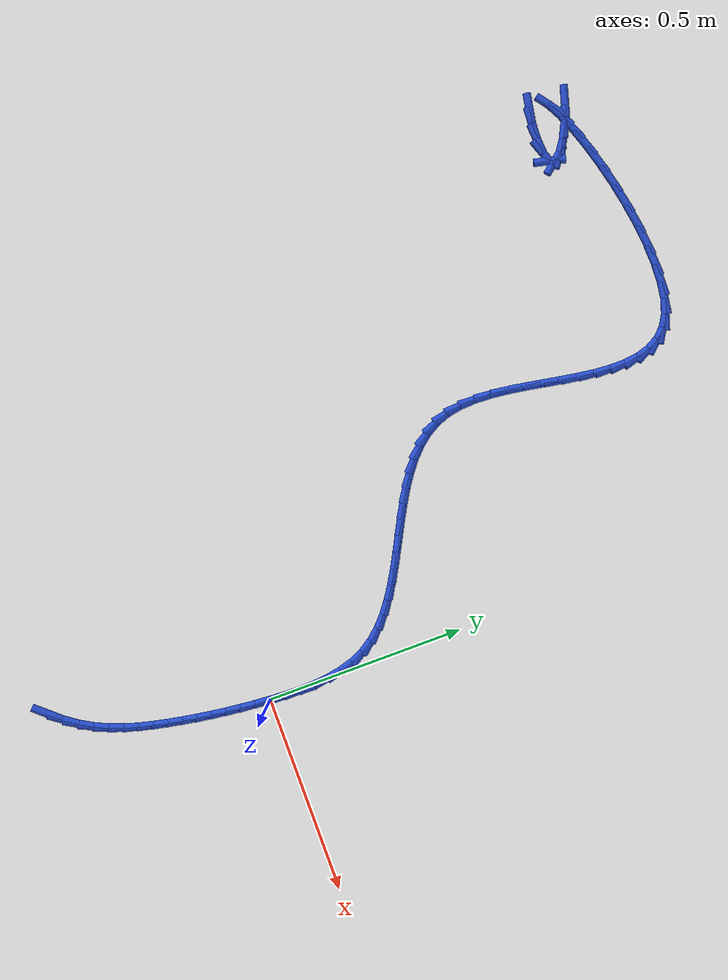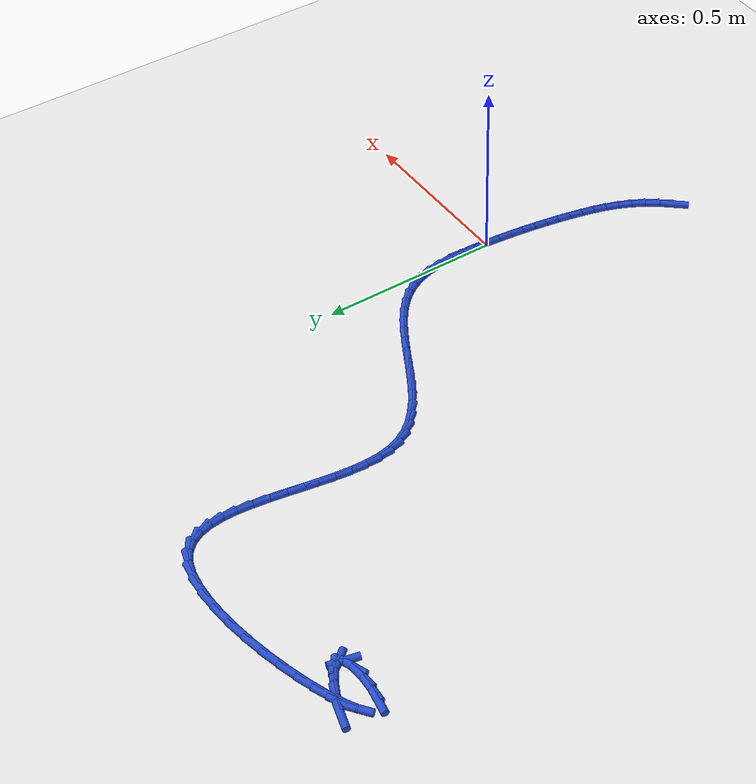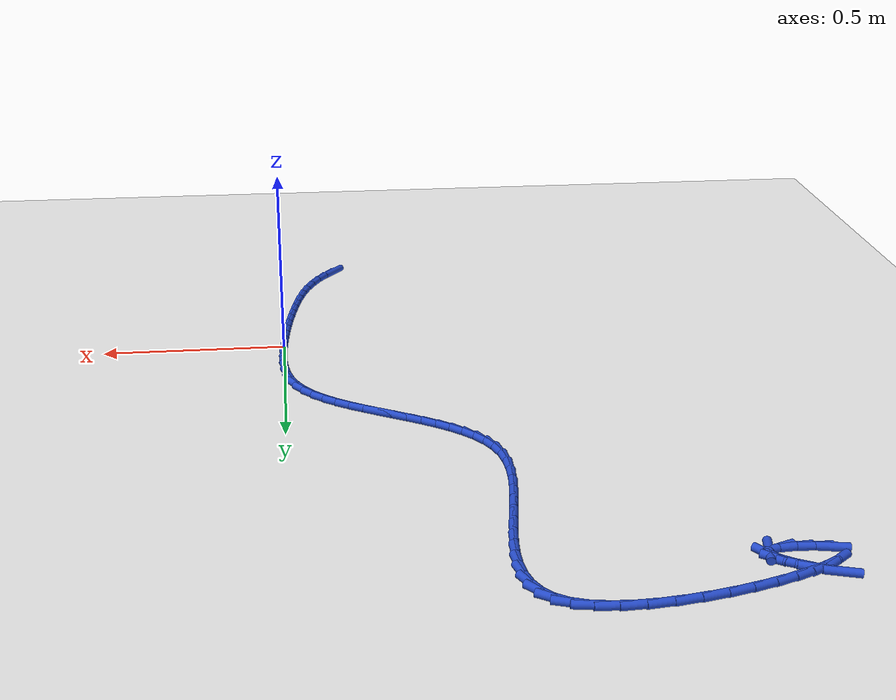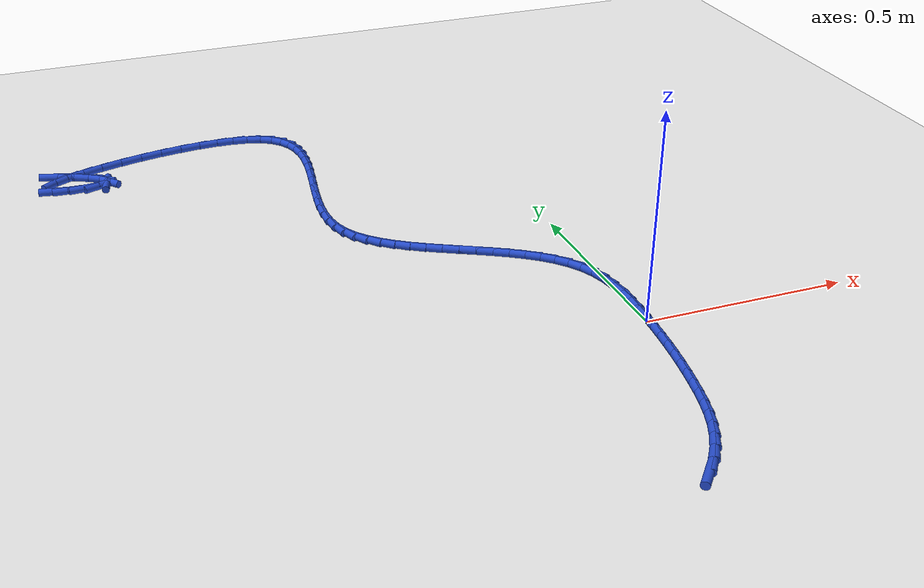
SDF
<sdf version="1.6">
 <world name="default">
  <model name="ground_plane">
   <static>1</static>
   <link name="link">
    <collision name="collision">
     <geometry><plane><normal>0 0 1</normal><size>100 100</size></plane></geometry>
     <surface><friction><ode><mu>100</mu><mu2>50</mu2></ode></friction></surface>
    </collision>
    <visual name="visual">
     <cast_shadows>0</cast_shadows>
     <geometry><plane><normal>0 0 1</normal><size>100 100</size></plane></geometry>
     <material>
      <script><uri>file://media/materials/scripts/gazebo.material</uri><name>Gazebo/WhiteGlow</name></script>
     </material>
    </visual>
   </link>
  </model>
  <model name="line">
   <link name="link_0">
    <pose>-1.5178830414797062e-18 -2.7755575615628914e-17 0.01 0 1.57 1.5170530943298772</pose>
    <collision name="collision">
     <geometry><cylinder><radius>0.01</radius><length>0.08</length></cylinder></geometry>
    </collision>
    <visual name="visual">
     <material>
      <script><name>Gazebo/Blue</name><uri>file://media/materials/scripts/gazebo.material</uri></script>
     </material>
     <geometry><cylinder><radius>0.01</radius><length>0.08</length></cylinder></geometry>
    </visual>
   </link>
   <link name="link_1">
    <pose>0.0020785992189331615 0.03863923898723506 0.01 0 1.57 1.5495222511187354</pose>
    <collision name="collision">
     <geometry><cylinder><radius>0.01</radius><length>0.08</length></cylinder></geometry>
    </collision>
    <visual name="visual">
     <material>
      <script><name>Gazebo/Blue</name><uri>file://media/materials/scripts/gazebo.material</uri></script>
     </material>
     <geometry><cylinder><radius>0.01</radius><length>0.08</length></cylinder></geometry>
    </visual>
   </link>
   <link name="link_2">
    <pose>0.002904720988601142 0.07746570308452606 0.01 0 1.57 -1.5441596162405162</pose>
    <collision name="collision">
     <geometry><cylinder><radius>0.01</radius><length>0.08</length></cylinder></geometry>
    </collision>
    <visual name="visual">
     <material>
      <script><name>Gazebo/Blue</name><uri>file://media/materials/scripts/gazebo.material</uri></script>
     </material>
     <geometry><cylinder><radius>0.01</radius><length>0.08</length></cylinder></geometry>
    </visual>
   </link>
   <link name="link_3">
    <pose>0.0018789900140086437 0.11596476514933175 0.01 0 1.57 -1.4787251162206834</pose>
    <collision name="collision">
     <geometry><cylinder><radius>0.01</radius><length>0.08</length></cylinder></geometry>
    </collision>
    <visual name="visual">
     <material>
      <script><name>Gazebo/Blue</name><uri>file://media/materials/scripts/gazebo.material</uri></script>
     </material>
     <geometry><cylinder><radius>0.01</radius><length>0.08</length></cylinder></geometry>
    </visual>
   </link>
   <link name="link_4">
    <pose>-0.0015979689998396251 0.1536217980391109 0.01 0 1.57 -1.3928769809905095</pose>
    <collision name="collision">
     <geometry><cylinder><radius>0.01</radius><length>0.08</length></cylinder></geometry>
    </collision>
    <visual name="visual">
     <material>
      <script><name>Gazebo/Blue</name><uri>file://media/materials/scripts/gazebo.material</uri></script>
     </material>
     <geometry><cylinder><radius>0.01</radius><length>0.08</length></cylinder></geometry>
    </visual>
   </link>
   <link name="link_5">
    <pose>-0.00812553134793896 0.18992217461132221 0.01 0 1.57 -1.283373060486346</pose>
    <collision name="collision">
     <geometry><cylinder><radius>0.01</radius><length>0.08</length></cylinder></geometry>
    </collision>
    <visual name="visual">
     <material>
      <script><name>Gazebo/Blue</name><uri>file://media/materials/scripts/gazebo.material</uri></script>
     </material>
     <geometry><cylinder><radius>0.01</radius><length>0.08</length></cylinder></geometry>
    </visual>
   </link>
   <link name="link_6">
    <pose>-0.018303072325284664 0.22435126772342456 0.01 0 1.57 -1.1477487399118411</pose>
    <collision name="collision">
     <geometry><cylinder><radius>0.01</radius><length>0.08</length></cylinder></geometry>
    </collision>
    <visual name="visual">
     <material>
      <script><name>Gazebo/Blue</name><uri>file://media/materials/scripts/gazebo.material</uri></script>
     </material>
     <geometry><cylinder><radius>0.01</radius><length>0.08</length></cylinder></geometry>
    </visual>
   </link>
   <link name="link_7">
    <pose>-0.032729967226872006 0.25639445023287655 0.01 0 1.57 -0.9920843205776065</pose>
    <collision name="collision">
     <geometry><cylinder><radius>0.01</radius><length>0.08</length></cylinder></geometry>
    </collision>
    <visual name="visual">
     <material>
      <script><name>Gazebo/Blue</name><uri>file://media/materials/scripts/gazebo.material</uri></script>
     </material>
     <geometry><cylinder><radius>0.01</radius><length>0.08</length></cylinder></geometry>
    </visual>
   </link>
   <link name="link_8">
    <pose>-0.05184516821218978 0.28565259870171955 0.01 0 1.57 -0.8498550706622849</pose>
    <collision name="collision">
     <geometry><cylinder><radius>0.01</radius><length>0.08</length></cylinder></geometry>
    </collision>
    <visual name="visual">
     <material>
      <script><name>Gazebo/Blue</name><uri>file://media/materials/scripts/gazebo.material</uri></script>
     </material>
     <geometry><cylinder><radius>0.01</radius><length>0.08</length></cylinder></geometry>
    </visual>
   </link>
   <link name="link_9">
    <pose>-0.07527280861990056 0.312313254402616 0.01 0 1.57 -0.7336496715813939</pose>
    <collision name="collision">
     <geometry><cylinder><radius>0.01</radius><length>0.08</length></cylinder></geometry>
    </collision>
    <visual name="visual">
     <material>
      <script><name>Gazebo/Blue</name><uri>file://media/materials/scripts/gazebo.material</uri></script>
     </material>
     <geometry><cylinder><radius>0.01</radius><length>0.08</length></cylinder></geometry>
    </visual>
   </link>
   <link name="link_10">
    <pose>-0.10237895651911431 0.3367497640692885 0.01 0 1.57 -0.6429238868509911</pose>
    <collision name="collision">
     <geometry><cylinder><radius>0.01</radius><length>0.08</length></cylinder></geometry>
    </collision>
    <visual name="visual">
     <material>
      <script><name>Gazebo/Blue</name><uri>file://media/materials/scripts/gazebo.material</uri></script>
     </material>
     <geometry><cylinder><radius>0.01</radius><length>0.08</length></cylinder></geometry>
    </visual>
   </link>
   <link name="link_11">
    <pose>-0.1325295773471854 0.35933554832971304 0.01 0 1.57 -0.5751607206195366</pose>
    <collision name="collision">
     <geometry><cylinder><radius>0.01</radius><length>0.08</length></cylinder></geometry>
    </collision>
    <visual name="visual">
     <material>
      <script><name>Gazebo/Blue</name><uri>file://media/materials/scripts/gazebo.material</uri></script>
     </material>
     <geometry><cylinder><radius>0.01</radius><length>0.08</length></cylinder></geometry>
    </visual>
   </link>
   <link name="link_12">
    <pose>-0.16509063654146838 0.38044402781186626 0.01 0 1.57 -0.527518195686932</pose>
    <collision name="collision">
     <geometry><cylinder><radius>0.01</radius><length>0.08</length></cylinder></geometry>
    </collision>
    <visual name="visual">
     <material>
      <script><name>Gazebo/Blue</name><uri>file://media/materials/scripts/gazebo.material</uri></script>
     </material>
     <geometry><cylinder><radius>0.01</radius><length>0.08</length></cylinder></geometry>
    </visual>
   </link>
   <link name="link_13">
    <pose>-0.19942809953931767 0.40044862314372454 0.01 0 1.57 -0.4976398556508698</pose>
    <collision name="collision">
     <geometry><cylinder><radius>0.01</radius><length>0.08</length></cylinder></geometry>
    </collision>
    <visual name="visual">
     <material>
      <script><name>Gazebo/Blue</name><uri>file://media/materials/scripts/gazebo.material</uri></script>
     </material>
     <geometry><cylinder><radius>0.01</radius><length>0.08</length></cylinder></geometry>
    </visual>
   </link>
   <link name="link_14">
    <pose>-0.2349079317780876 0.4197227549532642 0.01 0 1.57 -0.4839544376546903</pose>
    <collision name="collision">
     <geometry><cylinder><radius>0.01</radius><length>0.08</length></cylinder></geometry>
    </collision>
    <visual name="visual">
     <material>
      <script><name>Gazebo/Blue</name><uri>file://media/materials/scripts/gazebo.material</uri></script>
     </material>
     <geometry><cylinder><radius>0.01</radius><length>0.08</length></cylinder></geometry>
    </visual>
   </link>
   <link name="link_15">
    <pose>-0.27089609869513287 0.4386398438684619 0.01 0 1.57 -0.4857541067202754</pose>
    <collision name="collision">
     <geometry><cylinder><radius>0.01</radius><length>0.08</length></cylinder></geometry>
    </collision>
    <visual name="visual">
     <material>
      <script><name>Gazebo/Blue</name><uri>file://media/materials/scripts/gazebo.material</uri></script>
     </material>
     <geometry><cylinder><radius>0.01</radius><length>0.08</length></cylinder></geometry>
    </visual>
   </link>
   <link name="link_16">
    <pose>-0.3067585657278078 0.4575733105172938 0.01 0 1.57 -0.50320975135911</pose>
    <collision name="collision">
     <geometry><cylinder><radius>0.01</radius><length>0.08</length></cylinder></geometry>
    </collision>
    <visual name="visual">
     <material>
      <script><name>Gazebo/Blue</name><uri>file://media/materials/scripts/gazebo.material</uri></script>
     </material>
     <geometry><cylinder><radius>0.01</radius><length>0.08</length></cylinder></geometry>
    </visual>
   </link>
   <link name="link_17">
    <pose>-0.3418612983134668 0.4768965755277364 0.01 0 1.57 -0.5373842920744916</pose>
    <collision name="collision">
     <geometry><cylinder><radius>0.01</radius><length>0.08</length></cylinder></geometry>
    </collision>
    <visual name="visual">
     <material>
      <script><name>Gazebo/Blue</name><uri>file://media/materials/scripts/gazebo.material</uri></script>
     </material>
     <geometry><cylinder><radius>0.01</radius><length>0.08</length></cylinder></geometry>
    </visual>
   </link>
   <link name="link_18">
    <pose>-0.37557026188946435 0.4969830595277662 0.01 0 1.57 -0.5902358637414826</pose>
    <collision name="collision">
     <geometry><cylinder><radius>0.01</radius><length>0.08</length></cylinder></geometry>
    </collision>
    <visual name="visual">
     <material>
      <script><name>Gazebo/Blue</name><uri>file://media/materials/scripts/gazebo.material</uri></script>
     </material>
     <geometry><cylinder><radius>0.01</radius><length>0.08</length></cylinder></geometry>
    </visual>
   </link>
   <link name="link_19">
    <pose>-0.407251421893155 0.5182061831453595 0.01 0 1.57 -0.6645249062836834</pose>
    <collision name="collision">
     <geometry><cylinder><radius>0.01</radius><length>0.08</length></cylinder></geometry>
    </collision>
    <visual name="visual">
     <material>
      <script><name>Gazebo/Blue</name><uri>file://media/materials/scripts/gazebo.material</uri></script>
     </material>
     <geometry><cylinder><radius>0.01</radius><length>0.08</length></cylinder></geometry>
    </visual>
   </link>
   <link name="link_20">
    <pose>-0.4362707437618932 0.5409393670084928 0.01 0 1.57 -0.7634155720979461</pose>
    <collision name="collision">
     <geometry><cylinder><radius>0.01</radius><length>0.08</length></cylinder></geometry>
    </collision>
    <visual name="visual">
     <material>
      <script><name>Gazebo/Blue</name><uri>file://media/materials/scripts/gazebo.material</uri></script>
     </material>
     <geometry><cylinder><radius>0.01</radius><length>0.08</length></cylinder></geometry>
    </visual>
   </link>
   <link name="link_21">
    <pose>-0.46199419293303334 0.5655560317451427 0.01 0 1.57 -0.8894046236103116</pose>
    <collision name="collision">
     <geometry><cylinder><radius>0.01</radius><length>0.08</length></cylinder></geometry>
    </collision>
    <visual name="visual">
     <material>
      <script><name>Gazebo/Blue</name><uri>file://media/materials/scripts/gazebo.material</uri></script>
     </material>
     <geometry><cylinder><radius>0.01</radius><length>0.08</length></cylinder></geometry>
    </visual>
   </link>
   <link name="link_22">
    <pose>-0.4837877348439299 0.5924295979832852 0.01 0 1.57 -1.04224156527305</pose>
    <collision name="collision">
     <geometry><cylinder><radius>0.01</radius><length>0.08</length></cylinder></geometry>
    </collision>
    <visual name="visual">
     <material>
      <script><name>Gazebo/Blue</name><uri>file://media/materials/scripts/gazebo.material</uri></script>
     </material>
     <geometry><cylinder><radius>0.01</radius><length>0.08</length></cylinder></geometry>
    </visual>
   </link>
   <link name="link_23">
    <pose>-0.5010173349319375 0.6219334863508972 0.01 0 1.57 -1.2159805231736438</pose>
    <collision name="collision">
     <geometry><cylinder><radius>0.01</radius><length>0.08</length></cylinder></geometry>
    </collision>
    <visual name="visual">
     <material>
      <script><name>Gazebo/Blue</name><uri>file://media/materials/scripts/gazebo.material</uri></script>
     </material>
     <geometry><cylinder><radius>0.01</radius><length>0.08</length></cylinder></geometry>
    </visual>
   </link>
   <link name="link_24">
    <pose>-0.5130592799717988 0.6544357450432797 0.01 0 1.57 -1.382666427620539</pose>
    <collision name="collision">
     <geometry><cylinder><radius>0.01</radius><length>0.08</length></cylinder></geometry>
    </collision>
    <visual name="visual">
     <material>
      <script><name>Gazebo/Blue</name><uri>file://media/materials/scripts/gazebo.material</uri></script>
     </material>
     <geometry><cylinder><radius>0.01</radius><length>0.08</length></cylinder></geometry>
    </visual>
   </link>
   <link name="link_25">
    <pose>-0.5198340738945745 0.6900211479161033 0.01 0 1.57 -1.5126613295837372</pose>
    <collision name="collision">
     <geometry><cylinder><radius>0.01</radius><length>0.08</length></cylinder></geometry>
    </collision>
    <visual name="visual">
     <material>
      <script><name>Gazebo/Blue</name><uri>file://media/materials/scripts/gazebo.material</uri></script>
     </material>
     <geometry><cylinder><radius>0.01</radius><length>0.08</length></cylinder></geometry>
    </visual>
   </link>
   <link name="link_26">
    <pose>-0.5220652134044766 0.7283564973500439 0.01 0 1.57 1.5336771816916435</pose>
    <collision name="collision">
     <geometry><cylinder><radius>0.01</radius><length>0.08</length></cylinder></geometry>
    </collision>
    <visual name="visual">
     <material>
      <script><name>Gazebo/Blue</name><uri>file://media/materials/scripts/gazebo.material</uri></script>
     </material>
     <geometry><cylinder><radius>0.01</radius><length>0.08</length></cylinder></geometry>
    </visual>
   </link>
   <link name="link_27">
    <pose>-0.5205543576118971 0.7690406732207347 0.01 0 1.57 1.467801363794704</pose>
    <collision name="collision">
     <geometry><cylinder><radius>0.01</radius><length>0.08</length></cylinder></geometry>
    </collision>
    <visual name="visual">
     <material>
      <script><name>Gazebo/Blue</name><uri>file://media/materials/scripts/gazebo.material</uri></script>
     </material>
     <geometry><cylinder><radius>0.01</radius><length>0.08</length></cylinder></geometry>
    </visual>
   </link>
   <link name="link_28">
    <pose>-0.5161636557785304 0.8115200843354847 0.01 0 1.57 1.4254953011933171</pose>
    <collision name="collision">
     <geometry><cylinder><radius>0.01</radius><length>0.08</length></cylinder></geometry>
    </collision>
    <visual name="visual">
     <material>
      <script><name>Gazebo/Blue</name><uri>file://media/materials/scripts/gazebo.material</uri></script>
     </material>
     <geometry><cylinder><radius>0.01</radius><length>0.08</length></cylinder></geometry>
    </visual>
   </link>
   <link name="link_29">
    <pose>-0.5097720464668061 0.8551988205031507 0.01 0 1.57 1.4027219726804094</pose>
    <collision name="collision">
     <geometry><cylinder><radius>0.01</radius><length>0.08</length></cylinder></geometry>
    </collision>
    <visual name="visual">
     <material>
      <script><name>Gazebo/Blue</name><uri>file://media/materials/scripts/gazebo.material</uri></script>
     </material>
     <geometry><cylinder><radius>0.01</radius><length>0.08</length></cylinder></geometry>
    </visual>
   </link>
   <link name="link_30">
    <pose>-0.502258468883107 0.8994809699094438 0.01 0 1.57 1.397421018821556</pose>
    <collision name="collision">
     <geometry><cylinder><radius>0.01</radius><length>0.08</length></cylinder></geometry>
    </collision>
    <visual name="visual">
     <material>
      <script><name>Gazebo/Blue</name><uri>file://media/materials/scripts/gazebo.material</uri></script>
     </material>
     <geometry><cylinder><radius>0.01</radius><length>0.08</length></cylinder></geometry>
    </visual>
   </link>
   <link name="link_31">
    <pose>-0.49450186223381654 0.9437706207400752 0.01 0 1.57 1.4092754066079751</pose>
    <collision name="collision">
     <geometry><cylinder><radius>0.01</radius><length>0.08</length></cylinder></geometry>
    </collision>
    <visual name="visual">
     <material>
      <script><name>Gazebo/Blue</name><uri>file://media/materials/scripts/gazebo.material</uri></script>
     </material>
     <geometry><cylinder><radius>0.01</radius><length>0.08</length></cylinder></geometry>
    </visual>
   </link>
   <link name="link_32">
    <pose>-0.48738116572531714 0.9874718611807559 0.01 0 1.57 1.4397026970054208</pose>
    <collision name="collision">
     <geometry><cylinder><radius>0.01</radius><length>0.08</length></cylinder></geometry>
    </collision>
    <visual name="visual">
     <material>
      <script><name>Gazebo/Blue</name><uri>file://media/materials/scripts/gazebo.material</uri></script>
     </material>
     <geometry><cylinder><radius>0.01</radius><length>0.08</length></cylinder></geometry>
    </visual>
   </link>
   <link name="link_33">
    <pose>-0.4817753185639928 1.0299887794171974 0.01 0 1.57 1.4921098379531508</pose>
    <collision name="collision">
     <geometry><cylinder><radius>0.01</radius><length>0.08</length></cylinder></geometry>
    </collision>
    <visual name="visual">
     <material>
      <script><name>Gazebo/Blue</name><uri>file://media/materials/scripts/gazebo.material</uri></script>
     </material>
     <geometry><cylinder><radius>0.01</radius><length>0.08</length></cylinder></geometry>
    </visual>
   </link>
   <link name="link_34">
    <pose>-0.47856325995622595 1.07072546363511 0.01 0 1.57 -1.56921477700065</pose>
    <collision name="collision">
     <geometry><cylinder><radius>0.01</radius><length>0.08</length></cylinder></geometry>
    </collision>
    <visual name="visual">
     <material>
      <script><name>Gazebo/Blue</name><uri>file://media/materials/scripts/gazebo.material</uri></script>
     </material>
     <geometry><cylinder><radius>0.01</radius><length>0.08</length></cylinder></geometry>
    </visual>
   </link>
   <link name="link_35">
    <pose>-0.4786239291084 1.1090860020202058 0.01 0 1.57 -1.4523224795311227</pose>
    <collision name="collision">
     <geometry><cylinder><radius>0.01</radius><length>0.08</length></cylinder></geometry>
    </collision>
    <visual name="visual">
     <material>
      <script><name>Gazebo/Blue</name><uri>file://media/materials/scripts/gazebo.material</uri></script>
     </material>
     <geometry><cylinder><radius>0.01</radius><length>0.08</length></cylinder></geometry>
    </visual>
   </link>
   <link name="link_36">
    <pose>-0.4828362652268979 1.144474482758195 0.01 0 1.57 -1.2881043076869754</pose>
    <collision name="collision">
     <geometry><cylinder><radius>0.01</radius><length>0.08</length></cylinder></geometry>
    </collision>
    <visual name="visual">
     <material>
      <script><name>Gazebo/Blue</name><uri>file://media/materials/scripts/gazebo.material</uri></script>
     </material>
     <geometry><cylinder><radius>0.01</radius><length>0.08</length></cylinder></geometry>
    </visual>
   </link>
   <link name="link_37">
    <pose>-0.49207920751810297 1.1762949940347898 0.01 0 1.57 -1.0695829565518729</pose>
    <collision name="collision">
     <geometry><cylinder><radius>0.01</radius><length>0.08</length></cylinder></geometry>
    </collision>
    <visual name="visual">
     <material>
      <script><name>Gazebo/Blue</name><uri>file://media/materials/scripts/gazebo.material</uri></script>
     </material>
     <geometry><cylinder><radius>0.01</radius><length>0.08</length></cylinder></geometry>
    </visual>
   </link>
   <link name="link_38">
    <pose>-0.5072316951883978 1.2039516240357002 0.01 0 1.57 -0.806713207750888</pose>
    <collision name="collision">
     <geometry><cylinder><radius>0.01</radius><length>0.08</length></cylinder></geometry>
    </collision>
    <visual name="visual">
     <material>
      <script><name>Gazebo/Blue</name><uri>file://media/materials/scripts/gazebo.material</uri></script>
     </material>
     <geometry><cylinder><radius>0.01</radius><length>0.08</length></cylinder></geometry>
    </visual>
   </link>
   <link name="link_39">
    <pose>-0.529172667444166 1.2268484609466377 0.01 0 1.57 -0.5348404785426674</pose>
    <collision name="collision">
     <geometry><cylinder><radius>0.01</radius><length>0.08</length></cylinder></geometry>
    </collision>
    <visual name="visual">
     <material>
      <script><name>Gazebo/Blue</name><uri>file://media/materials/scripts/gazebo.material</uri></script>
     </material>
     <geometry><cylinder><radius>0.01</radius><length>0.08</length></cylinder></geometry>
    </visual>
   </link>
   <link name="link_40">
    <pose>-0.5587810634917902 1.2443895929533135 0.01 0 1.57 -0.30150012228880224</pose>
    <collision name="collision">
     <geometry><cylinder><radius>0.01</radius><length>0.08</length></cylinder></geometry>
    </collision>
    <visual name="visual">
     <material>
      <script><name>Gazebo/Blue</name><uri>file://media/materials/scripts/gazebo.material</uri></script>
     </material>
     <geometry><cylinder><radius>0.01</radius><length>0.08</length></cylinder></geometry>
    </visual>
   </link>
   <link name="link_41">
    <pose>-0.5965880256604938 1.2561468278061299 0.01 0 1.57 -0.13986153490301337</pose>
    <collision name="collision">
     <geometry><cylinder><radius>0.01</radius><length>0.08</length></cylinder></geometry>
    </collision>
    <visual name="visual">
     <material>
      <script><name>Gazebo/Blue</name><uri>file://media/materials/scripts/gazebo.material</uri></script>
     </material>
     <geometry><cylinder><radius>0.01</radius><length>0.08</length></cylinder></geometry>
    </visual>
   </link>
   <link name="link_42">
    <pose>-0.6415094559805679 1.2624708974425594 0.01 0 1.57 -0.029062698073546524</pose>
    <collision name="collision">
     <geometry><cylinder><radius>0.01</radius><length>0.08</length></cylinder></geometry>
    </collision>
    <visual name="visual">
     <material>
      <script><name>Gazebo/Blue</name><uri>file://media/materials/scripts/gazebo.material</uri></script>
     </material>
     <geometry><cylinder><radius>0.01</radius><length>0.08</length></cylinder></geometry>
    </visual>
   </link>
   <link name="link_43">
    <pose>-0.6919926957781308 1.2639384898177854 0.01 0 1.57 0.05156101494900415</pose>
    <collision name="collision">
     <geometry><cylinder><radius>0.01</radius><length>0.08</length></cylinder></geometry>
    </collision>
    <visual name="visual">
     <material>
      <script><name>Gazebo/Blue</name><uri>file://media/materials/scripts/gazebo.material</uri></script>
     </material>
     <geometry><cylinder><radius>0.01</radius><length>0.08</length></cylinder></geometry>
    </visual>
   </link>
   <link name="link_44">
    <pose>-0.7464850366134486 1.2611263168857896 0.01 0 1.57 0.1139098649103487</pose>
    <collision name="collision">
     <geometry><cylinder><radius>0.01</radius><length>0.08</length></cylinder></geometry>
    </collision>
    <visual name="visual">
     <material>
      <script><name>Gazebo/Blue</name><uri>file://media/materials/scripts/gazebo.material</uri></script>
     </material>
     <geometry><cylinder><radius>0.01</radius><length>0.08</length></cylinder></geometry>
    </visual>
   </link>
   <link name="link_45">
    <pose>-0.8034337700467888 1.254611090600553 0.01 0 1.57 0.16514023611571838</pose>
    <collision name="collision">
     <geometry><cylinder><radius>0.01</radius><length>0.08</length></cylinder></geometry>
    </collision>
    <visual name="visual">
     <material>
      <script><name>Gazebo/Blue</name><uri>file://media/materials/scripts/gazebo.material</uri></script>
     </material>
     <geometry><cylinder><radius>0.01</radius><length>0.08</length></cylinder></geometry>
    </visual>
   </link>
   <link name="link_46">
    <pose>-0.861286187638417 1.244969522916057 0.01 0 1.57 0.20997869719354578</pose>
    <collision name="collision">
     <geometry><cylinder><radius>0.01</radius><length>0.08</length></cylinder></geometry>
    </collision>
    <visual name="visual">
     <material>
      <script><name>Gazebo/Blue</name><uri>file://media/materials/scripts/gazebo.material</uri></script>
     </material>
     <geometry><cylinder><radius>0.01</radius><length>0.08</length></cylinder></geometry>
    </visual>
   </link>
   <link name="link_47">
    <pose>-0.9184895809486004 1.2327783257862825 0.01 0 1.57 0.2520451746422954</pose>
    <collision name="collision">
     <geometry><cylinder><radius>0.01</radius><length>0.08</length></cylinder></geometry>
    </collision>
    <visual name="visual">
     <material>
      <script><name>Gazebo/Blue</name><uri>file://media/materials/scripts/gazebo.material</uri></script>
     </material>
     <geometry><cylinder><radius>0.01</radius><length>0.08</length></cylinder></geometry>
    </visual>
   </link>
   <link name="link_48">
    <pose>-0.9734912415376056 1.218614211165211 0.01 0 1.57 0.2947860011651701</pose>
    <collision name="collision">
     <geometry><cylinder><radius>0.01</radius><length>0.08</length></cylinder></geometry>
    </collision>
    <visual name="visual">
     <material>
      <script><name>Gazebo/Blue</name><uri>file://media/materials/scripts/gazebo.material</uri></script>
     </material>
     <geometry><cylinder><radius>0.01</radius><length>0.08</length></cylinder></geometry>
    </visual>
   </link>
   <link name="link_49">
    <pose>-1.0247384609656986 1.203053891006824 0.01 0 1.57 0.34249576800314135</pose>
    <collision name="collision">
     <geometry><cylinder><radius>0.01</radius><length>0.08</length></cylinder></geometry>
    </collision>
    <visual name="visual">
     <material>
      <script><name>Gazebo/Blue</name><uri>file://media/materials/scripts/gazebo.material</uri></script>
     </material>
     <geometry><cylinder><radius>0.01</radius><length>0.08</length></cylinder></geometry>
    </visual>
   </link>
   <link name="link_50">
    <pose>-1.0706785307931466 1.1866740772651025 0.01 0 1.57 0.4021633208694779</pose>
    <collision name="collision">
     <geometry><cylinder><radius>0.01</radius><length>0.08</length></cylinder></geometry>
    </collision>
    <visual name="visual">
     <material>
      <script><name>Gazebo/Blue</name><uri>file://media/materials/scripts/gazebo.material</uri></script>
     </material>
     <geometry><cylinder><radius>0.01</radius><length>0.08</length></cylinder></geometry>
    </visual>
   </link>
   <link name="link_51">
    <pose>-1.1097587425802156 1.1700514818940277 0.01 0 1.57 0.4882443927290785</pose>
    <collision name="collision">
     <geometry><cylinder><radius>0.01</radius><length>0.08</length></cylinder></geometry>
    </collision>
    <visual name="visual">
     <material>
      <script><name>Gazebo/Blue</name><uri>file://media/materials/scripts/gazebo.material</uri></script>
     </material>
     <geometry><cylinder><radius>0.01</radius><length>0.08</length></cylinder></geometry>
    </visual>
   </link>
   <link name="link_52">
    <pose>-1.1404263878871725 1.1537628168475809 0.01 0 1.57 0.6388865633801648</pose>
    <collision name="collision">
     <geometry><cylinder><radius>0.01</radius><length>0.08</length></cylinder></geometry>
    </collision>
    <visual name="visual">
     <material>
      <script><name>Gazebo/Blue</name><uri>file://media/materials/scripts/gazebo.material</uri></script>
     </material>
     <geometry><cylinder><radius>0.01</radius><length>0.08</length></cylinder></geometry>
    </visual>
   </link>
   <link name="link_56">
    <pose>-1.147917135519211 1.1034816989876992 0.01 0 1.57 -0.17444849027638426</pose>
    <collision name="collision">
     <geometry><cylinder><radius>0.01</radius><length>0.08</length></cylinder></geometry>
    </collision>
    <visual name="visual">
     <material>
      <script><name>Gazebo/Blue</name><uri>file://media/materials/scripts/gazebo.material</uri></script>
     </material>
     <geometry><cylinder><radius>0.01</radius><length>0.08</length></cylinder></geometry>
    </visual>
   </link>
   <link name="link_57">
    <pose>-1.1141341298390697 1.0975277847051539 0.01 0 1.57 -0.04801757474055738</pose>
    <collision name="collision">
     <geometry><cylinder><radius>0.01</radius><length>0.08</length></cylinder></geometry>
    </collision>
    <visual name="visual">
     <material>
      <script><name>Gazebo/Blue</name><uri>file://media/materials/scripts/gazebo.material</uri></script>
     </material>
     <geometry><cylinder><radius>0.01</radius><length>0.08</length></cylinder></geometry>
    </visual>
   </link>
   <link name="link_58">
    <pose>-1.0724614775467658 1.0955252256806818 0.01 0 1.57 0.07192654719083427</pose>
    <collision name="collision">
     <geometry><cylinder><radius>0.01</radius><length>0.08</length></cylinder></geometry>
    </collision>
    <visual name="visual">
     <material>
      <script><name>Gazebo/Blue</name><uri>file://media/materials/scripts/gazebo.material</uri></script>
     </material>
     <geometry><cylinder><radius>0.01</radius><length>0.08</length></cylinder></geometry>
    </visual>
   </link>
   <link name="link_59">
    <pose>-1.03449497103619 1.098260744367171 0.01 0 1.57 0.34499766526176945</pose>
    <collision name="collision">
     <geometry><cylinder><radius>0.01</radius><length>0.08</length></cylinder></geometry>
    </collision>
    <visual name="visual">
     <material>
      <script><name>Gazebo/Blue</name><uri>file://media/materials/scripts/gazebo.material</uri></script>
     </material>
     <geometry><cylinder><radius>0.01</radius><length>0.08</length></cylinder></geometry>
    </visual>
   </link>
   <link name="link_60">
    <pose>-1.011620955819144 1.1064809770505448 0.01 0 1.57 1.3429377472638806</pose>
    <collision name="collision">
     <geometry><cylinder><radius>0.01</radius><length>0.08</length></cylinder></geometry>
    </collision>
    <visual name="visual">
     <material>
      <script><name>Gazebo/Blue</name><uri>file://media/materials/scripts/gazebo.material</uri></script>
     </material>
     <geometry><cylinder><radius>0.01</radius><length>0.08</length></cylinder></geometry>
    </visual>
   </link>
   <link name="link_61">
    <pose>-1.0085261344128973 1.1198273015198252 0.01 0 1.57 -0.8775524399654754</pose>
    <collision name="collision">
     <geometry><cylinder><radius>0.01</radius><length>0.08</length></cylinder></geometry>
    </collision>
    <visual name="visual">
     <material>
      <script><name>Gazebo/Blue</name><uri>file://media/materials/scripts/gazebo.material</uri></script>
     </material>
     <geometry><cylinder><radius>0.01</radius><length>0.08</length></cylinder></geometry>
    </visual>
   </link>
   <link name="link_62">
    <pose>-1.0225710255122034 1.1367324749067405 0.01 0 1.57 -0.5893144285496988</pose>
    <collision name="collision">
     <geometry><cylinder><radius>0.01</radius><length>0.08</length></cylinder></geometry>
    </collision>
    <visual name="visual">
     <material>
      <script><name>Gazebo/Blue</name><uri>file://media/materials/scripts/gazebo.material</uri></script>
     </material>
     <geometry><cylinder><radius>0.01</radius><length>0.08</length></cylinder></geometry>
    </visual>
   </link>
   <link name="link_63">
    <pose>-1.0507439436930441 1.1555678508077571 0.01 0 1.57 -0.4532566293506664</pose>
    <collision name="collision">
     <geometry><cylinder><radius>0.01</radius><length>0.08</length></cylinder></geometry>
    </collision>
    <visual name="visual">
     <material>
      <script><name>Gazebo/Blue</name><uri>file://media/materials/scripts/gazebo.material</uri></script>
     </material>
     <geometry><cylinder><radius>0.01</radius><length>0.08</length></cylinder></geometry>
    </visual>
   </link>
   <link name="link_64">
    <pose>-1.0900332035314002 1.1747047828193413 0.01 0 1.57 -0.35945721357032306</pose>
    <collision name="collision">
     <geometry><cylinder><radius>0.01</radius><length>0.08</length></cylinder></geometry>
    </collision>
    <visual name="visual">
     <material>
      <script><name>Gazebo/Blue</name><uri>file://media/materials/scripts/gazebo.material</uri></script>
     </material>
     <geometry><cylinder><radius>0.01</radius><length>0.08</length></cylinder></geometry>
    </visual>
   </link>
   <link name="link_65">
    <pose>-1.137427119603253 1.1925146245379599 0.01 0 1.57 -0.27579400454257824</pose>
    <collision name="collision">
     <geometry><cylinder><radius>0.01</radius><length>0.08</length></cylinder></geometry>
    </collision>
    <visual name="visual">
     <material>
      <script><name>Gazebo/Blue</name><uri>file://media/materials/scripts/gazebo.material</uri></script>
     </material>
     <geometry><cylinder><radius>0.01</radius><length>0.08</length></cylinder></geometry>
    </visual>
   </link>
   <link name="link_225">
    <pose>-0.15724564807175642 -0.5264926444333996 0.01 0 1.57 0.8574785205051679</pose>
    <collision name="collision">
     <geometry><cylinder><radius>0.01</radius><length>0.08</length></cylinder></geometry>
    </collision>
    <visual name="visual">
     <material>
      <script><name>Gazebo/Blue</name><uri>file://media/materials/scripts/gazebo.material</uri></script>
     </material>
     <geometry><cylinder><radius>0.01</radius><length>0.08</length></cylinder></geometry>
    </visual>
   </link>
   <link name="link_226">
    <pose>-0.1299392605136116 -0.4949360271123803 0.01 0 1.57 0.9555661643793925</pose>
    <collision name="collision">
     <geometry><cylinder><radius>0.01</radius><length>0.08</length></cylinder></geometry>
    </collision>
    <visual name="visual">
     <material>
      <script><name>Gazebo/Blue</name><uri>file://media/materials/scripts/gazebo.material</uri></script>
     </material>
     <geometry><cylinder><radius>0.01</radius><length>0.08</length></cylinder></geometry>
    </visual>
   </link>
   <link name="link_227">
    <pose>-0.1070435758595105 -0.4625394927060489 0.01 0 1.57 1.052180547393026</pose>
    <collision name="collision">
     <geometry><cylinder><radius>0.01</radius><length>0.08</length></cylinder></geometry>
    </collision>
    <visual name="visual">
     <material>
      <script><name>Gazebo/Blue</name><uri>file://media/materials/scripts/gazebo.material</uri></script>
     </material>
     <geometry><cylinder><radius>0.01</radius><length>0.08</length></cylinder></geometry>
    </visual>
   </link>
   <link name="link_228">
    <pose>-0.08812438610126477 -0.4293901116439847 0.01 0 1.57 1.140693686246545</pose>
    <collision name="collision">
     <geometry><cylinder><radius>0.01</radius><length>0.08</length></cylinder></geometry>
    </collision>
    <visual name="visual">
     <material>
      <script><name>Gazebo/Blue</name><uri>file://media/materials/scripts/gazebo.material</uri></script>
     </material>
     <geometry><cylinder><radius>0.01</radius><length>0.08</length></cylinder></geometry>
    </visual>
   </link>
   <link name="link_229">
    <pose>-0.07261985287676337 -0.3955924147004693 0.01 0 1.57 1.2178164488506849</pose>
    <collision name="collision">
     <geometry><cylinder><radius>0.01</radius><length>0.08</length></cylinder></geometry>
    </collision>
    <visual name="visual">
     <material>
      <script><name>Gazebo/Blue</name><uri>file://media/materials/scripts/gazebo.material</uri></script>
     </material>
     <geometry><cylinder><radius>0.01</radius><length>0.08</length></cylinder></geometry>
    </visual>
   </link>
   <link name="link_230">
    <pose>-0.05996813782389498 -0.3612509326497835 0.01 0 1.57 1.281279030933146</pose>
    <collision name="collision">
     <geometry><cylinder><radius>0.01</radius><length>0.08</length></cylinder></geometry>
    </collision>
    <visual name="visual">
     <material>
      <script><name>Gazebo/Blue</name><uri>file://media/materials/scripts/gazebo.material</uri></script>
     </material>
     <geometry><cylinder><radius>0.01</radius><length>0.08</length></cylinder></geometry>
    </visual>
   </link>
   <link name="link_231">
    <pose>-0.049607402580549215 -0.326470196266211 0.01 0 1.57 1.3297687544634411</pose>
    <collision name="collision">
     <geometry><cylinder><radius>0.01</radius><length>0.08</length></cylinder></geometry>
    </collision>
    <visual name="visual">
     <material>
      <script><name>Gazebo/Blue</name><uri>file://media/materials/scripts/gazebo.material</uri></script>
     </material>
     <geometry><cylinder><radius>0.01</radius><length>0.08</length></cylinder></geometry>
    </visual>
   </link>
   <link name="link_232">
    <pose>-0.040975808784614695 -0.2913547363240326 0.01 0 1.57 1.3626757109948495</pose>
    <collision name="collision">
     <geometry><cylinder><radius>0.01</radius><length>0.08</length></cylinder></geometry>
    </collision>
    <visual name="visual">
     <material>
      <script><name>Gazebo/Blue</name><uri>file://media/materials/scripts/gazebo.material</uri></script>
     </material>
     <geometry><cylinder><radius>0.01</radius><length>0.08</length></cylinder></geometry>
    </visual>
   </link>
   <link name="link_233">
    <pose>-0.03351156486046497 -0.25600906822453257 0.01 0 1.57 1.3831936856013587</pose>
    <collision name="collision">
     <geometry><cylinder><radius>0.01</radius><length>0.08</length></cylinder></geometry>
    </collision>
    <visual name="visual">
     <material>
      <script><name>Gazebo/Blue</name><uri>file://media/materials/scripts/gazebo.material</uri></script>
     </material>
     <geometry><cylinder><radius>0.01</radius><length>0.08</length></cylinder></geometry>
    </visual>
   </link>
   <link name="link_234">
    <pose>-0.026770522808817036 -0.22049905230831193 0.01 0 1.57 1.4019616099783514</pose>
    <collision name="collision">
     <geometry><cylinder><radius>0.01</radius><length>0.08</length></cylinder></geometry>
    </collision>
    <visual name="visual">
     <material>
      <script><name>Gazebo/Blue</name><uri>file://media/materials/scripts/gazebo.material</uri></script>
     </material>
     <geometry><cylinder><radius>0.01</radius><length>0.08</length></cylinder></geometry>
    </visual>
   </link>
   <link name="link_235">
    <pose>-0.020679984071531494 -0.18476849889731087 0.01 0 1.57 1.420959069214379</pose>
    <collision name="collision">
     <geometry><cylinder><radius>0.01</radius><length>0.08</length></cylinder></geometry>
    </collision>
    <visual name="visual">
     <material>
      <script><name>Gazebo/Blue</name><uri>file://media/materials/scripts/gazebo.material</uri></script>
     </material>
     <geometry><cylinder><radius>0.01</radius><length>0.08</length></cylinder></geometry>
    </visual>
   </link>
   <link name="link_236">
    <pose>-0.015240381788592931 -0.1487371888652265 0.01 0 1.57 1.4400460734539664</pose>
    <collision name="collision">
     <geometry><cylinder><radius>0.01</radius><length>0.08</length></cylinder></geometry>
    </collision>
    <visual name="visual">
     <material>
      <script><name>Gazebo/Blue</name><uri>file://media/materials/scripts/gazebo.material</uri></script>
     </material>
     <geometry><cylinder><radius>0.01</radius><length>0.08</length></cylinder></geometry>
    </visual>
   </link>
   <link name="link_237">
    <pose>-0.010452149099985928 -0.11232490308575616 0.01 0 1.57 1.4590843699928868</pose>
    <collision name="collision">
     <geometry><cylinder><radius>0.01</radius><length>0.08</length></cylinder></geometry>
    </collision>
    <visual name="visual">
     <material>
      <script><name>Gazebo/Blue</name><uri>file://media/materials/scripts/gazebo.material</uri></script>
     </material>
     <geometry><cylinder><radius>0.01</radius><length>0.08</length></cylinder></geometry>
    </visual>
   </link>
   <link name="link_238">
    <pose>-0.0063157191456949605 -0.07545142243259603 0.01 0 1.57 1.4779409376638017</pose>
    <collision name="collision">
     <geometry><cylinder><radius>0.01</radius><length>0.08</length></cylinder></geometry>
    </collision>
    <visual name="visual">
     <material>
      <script><name>Gazebo/Blue</name><uri>file://media/materials/scripts/gazebo.material</uri></script>
     </material>
     <geometry><cylinder><radius>0.01</radius><length>0.08</length></cylinder></geometry>
    </visual>
   </link>
   <link name="link_239">
    <pose>-0.0028315250657048314 -0.038036527779445245 0.01 0 1.57 1.4964911230066191</pose>
    <collision name="collision">
     <geometry><cylinder><radius>0.01</radius><length>0.08</length></cylinder></geometry>
    </collision>
    <visual name="visual">
     <material>
      <script><name>Gazebo/Blue</name><uri>file://media/materials/scripts/gazebo.material</uri></script>
     </material>
     <geometry><cylinder><radius>0.01</radius><length>0.08</length></cylinder></geometry>
    </visual>
   </link>
   <link name="link_240">
    <pose>-5.312590645178972e-18 -1.1796119636642288e-16 0.01 0 1.57 1.5146212624403175</pose>
    <collision name="collision">
     <geometry><cylinder><radius>0.01</radius><length>0.08</length></cylinder></geometry>
    </collision>
    <visual name="visual">
     <material>
      <script><name>Gazebo/Blue</name><uri>file://media/materials/scripts/gazebo.material</uri></script>
     </material>
     <geometry><cylinder><radius>0.01</radius><length>0.08</length></cylinder></geometry>
    </visual>
   </link>
   <link name="link_241">
    <pose>0.0021784229114349364 0.03873838003204215 0.01 0 1.57 1.5322306855905952</pose>
    <collision name="collision">
     <geometry><cylinder><radius>0.01</radius><length>0.08</length></cylinder></geometry>
    </collision>
    <visual name="visual">
     <material>
      <script><name>Gazebo/Blue</name><uri>file://media/materials/scripts/gazebo.material</uri></script>
     </material>
     <geometry><cylinder><radius>0.01</radius><length>0.08</length></cylinder></geometry>
    </visual>
   </link>
   <link name="link_242">
    <pose>0.003703310528615414 0.07825883144298432 0.01 0 1.57 1.5235102903688258</pose>
    <collision name="collision">
     <geometry><cylinder><radius>0.01</radius><length>0.08</length></cylinder></geometry>
    </collision>
    <visual name="visual">
     <material>
      <script><name>Gazebo/Blue</name><uri>file://media/materials/scripts/gazebo.material</uri></script>
     </material>
     <geometry><cylinder><radius>0.01</radius><length>0.08</length></cylinder></geometry>
    </visual>
   </link>
  </model>
 </world>
</sdf>
